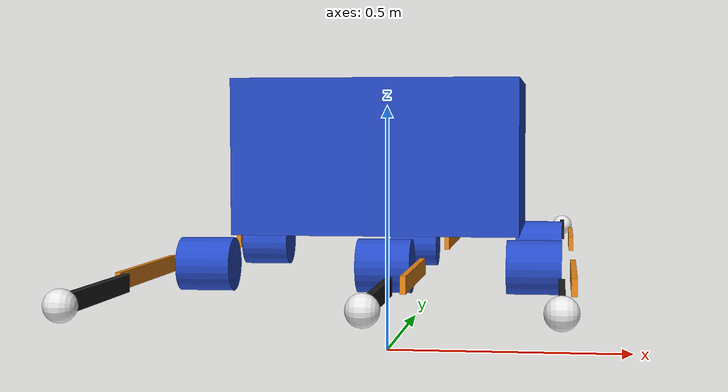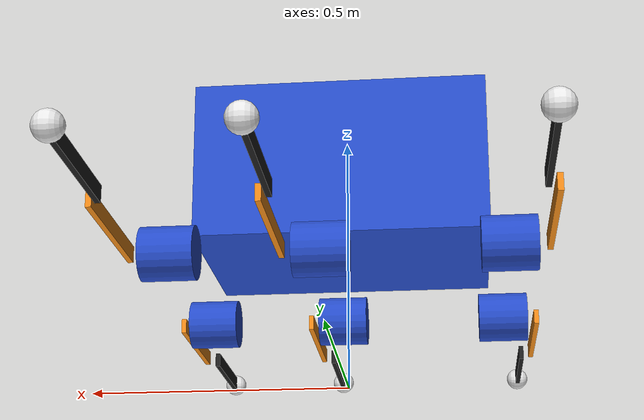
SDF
<sdf version='1.11'>
  <model name='robot'>
    <link name='base_link'>
      <inertial>
        <pose>0 0 0.40000000000000002 0 0 0</pose>
        <mass>140</mass>
        <inertia>
          <ixx>2.916666666666679</ixx>
          <ixy>0</ixy>
          <ixz>0</ixz>
          <iyy>4.5791666666666764</iyy>
          <iyz>0</iyz>
          <izz>5.3958333333333339</izz>
        </inertia>
      </inertial>
      <collision name='base_link_fixed_joint_lump__body_link_collision'>
        <pose>0 0 0.40000000000000002 0 0 0</pose>
        <geometry>
          <box>
            <size>0.55000000000000004 0.40000000000000002 0.29999999999999999</size>
          </box>
        </geometry>
        <surface>
          <contact>
            <ode/>
          </contact>
          <friction>
            <ode/>
          </friction>
        </surface>
      </collision>
      <visual name='base_link_fixed_joint_lump__body_link_visual'>
        <pose>0 0 0.40000000000000002 0 0 0</pose>
        <geometry>
          <box>
            <size>0.55000000000000004 0.40000000000000002 0.29999999999999999</size>
          </box>
        </geometry>
        <material>
          <script>
            <name>Gazebo/Blue</name>
            <uri>file://media/materials/scripts/gazebo.material</uri>
          </script>
          <diffuse>0.25 0.25 1 1</diffuse>
          <ambient>0.25 0.25 1 1</ambient>
        </material>
      </visual>
    </link>
    <joint name='coxa_joint_0' type='revolute'>
      <pose relative_to='base_link'>0.27500000000000002 -0.20000000000000001 0.25 0 0 0</pose>
      <parent>base_link</parent>
      <child>coxa_link_0</child>
      <axis>
        <xyz>0 0 1</xyz>
        <limit>
          <lower>-3.1400000000000001</lower>
          <upper>3.1400000000000001</upper>
          <effort>250</effort>
          <velocity>10</velocity>
        </limit>
        <dynamics>
          <spring_reference>0</spring_reference>
          <spring_stiffness>0</spring_stiffness>
        </dynamics>
      </axis>
    </joint>
    <link name='coxa_link_0'>
      <pose relative_to='coxa_joint_0'>0 0 0 0 0 0</pose>
      <inertial>
        <pose>0.029999999999999999 -0.050000000000000003 -0.050000000000000003 0 1.5700000000004057 0</pose>
        <mass>0.30099999999999999</mass>
        <inertia>
          <ixx>0.00043895833333333341</ixx>
          <ixy>0</ixy>
          <ixz>0</ixz>
          <iyy>0.00043895833333333341</iyy>
          <iyz>0</iyz>
          <izz>0.00037625000000000012</izz>
        </inertia>
      </inertial>
      <collision name='coxa_link_0_collision'>
        <pose>0.029999999999999999 -0.050000000000000003 -0.050000000000000003 0 1.5707963267948966 0</pose>
        <geometry>
          <cylinder>
            <length>0.10000000000000001</length>
            <radius>0.050000000000000003</radius>
          </cylinder>
        </geometry>
        <surface>
          <contact>
            <ode/>
          </contact>
          <friction>
            <ode/>
          </friction>
        </surface>
      </collision>
      <visual name='coxa_link_0_visual'>
        <pose>0.029999999999999999 -0.050000000000000003 -0.050000000000000003 0 1.5707963267948966 0</pose>
        <geometry>
          <cylinder>
            <length>0.10000000000000001</length>
            <radius>0.050000000000000003</radius>
          </cylinder>
        </geometry>
        <material>
          <script>
            <name>Gazebo/Blue</name>
            <uri>file://media/materials/scripts/gazebo.material</uri>
          </script>
          <diffuse>1 0 0 1</diffuse>
          <ambient>1 0 0 1</ambient>
        </material>
      </visual>
    </link>
    <joint name='femur_joint_0' type='revolute'>
      <pose relative_to='coxa_link_0'>0.070000000000000007 -0.050000000000000003 -0.050000000000000003 0 -1.5700000000004057 0</pose>
      <parent>coxa_link_0</parent>
      <child>femur_link_0</child>
      <axis>
        <xyz>0 0 1</xyz>
        <limit>
          <lower>-3.1400000000000001</lower>
          <upper>3.1400000000000001</upper>
          <effort>250</effort>
          <velocity>10</velocity>
        </limit>
        <dynamics>
          <spring_reference>0</spring_reference>
          <spring_stiffness>0</spring_stiffness>
        </dynamics>
      </axis>
    </joint>
    <link name='femur_link_0'>
      <pose relative_to='femur_joint_0'>0 0 0 0 0 0</pose>
      <inertial>
        <pose>0 -0.14999999999999999 -0.029999999999999999 0 0 0</pose>
        <mass>0.501</mass>
        <inertia>
          <ixx>0.003761674999999999</ixx>
          <ixy>0</ixy>
          <ixz>0</ixz>
          <iyy>4.1749999999999998e-05</iyy>
          <iyz>0</iyz>
          <izz>0.0037950749999999989</izz>
        </inertia>
      </inertial>
      <collision name='femur_link_0_collision'>
        <pose>0 -0.14999999999999999 -0.029999999999999999 0 0 0</pose>
        <geometry>
          <box>
            <size>0.029999999999999999 0.29999999999999999 0.01</size>
          </box>
        </geometry>
        <surface>
          <contact>
            <ode/>
          </contact>
          <friction>
            <ode/>
          </friction>
        </surface>
      </collision>
      <visual name='femur_link_0_visual'>
        <pose>0 -0.14999999999999999 -0.029999999999999999 0 0 0</pose>
        <geometry>
          <box>
            <size>0.029999999999999999 0.29999999999999999 0.01</size>
          </box>
        </geometry>
        <material>
          <script>
            <name>Gazebo/Orange</name>
            <uri>file://media/materials/scripts/gazebo.material</uri>
          </script>
          <diffuse>1 0.37500003 0.125 1</diffuse>
          <ambient>1 0.37500003 0.125 1</ambient>
        </material>
      </visual>
    </link>
    <joint name='tibia_joint_0' type='revolute'>
      <pose relative_to='femur_link_0'>0 -0.29999999999999999 -0.01 3.1415926535897931 0.001592653589793114 3.1415926535897931</pose>
      <parent>femur_link_0</parent>
      <child>tibia_link_0</child>
      <axis>
        <xyz>0 0 1</xyz>
        <limit>
          <lower>-3.1400000000000001</lower>
          <upper>3.1400000000000001</upper>
          <effort>250</effort>
          <velocity>10</velocity>
        </limit>
        <dynamics>
          <spring_reference>0</spring_reference>
          <spring_stiffness>0</spring_stiffness>
        </dynamics>
      </axis>
    </joint>
    <link name='tibia_link_0'>
      <pose relative_to='tibia_joint_0'>0 0 0 0 0 0</pose>
      <inertial>
        <pose>0 -0.15036069651741291 0 0 0 0</pose>
        <mass>0.40200000000000002</mass>
        <inertia>
          <ixx>0.0024606393656716459</ixx>
          <ixy>0</ixy>
          <ixz>0</ixz>
          <iyy>3.3666666666666667e-05</iyy>
          <iyz>0</iyz>
          <izz>0.0024873726990049792</izz>
        </inertia>
      </inertial>
      <collision name='tibia_link_0_collision'>
        <pose>0 -0.14999999999999999 0 0 0 0</pose>
        <geometry>
          <box>
            <size>0.029999999999999999 0.27000000000000002 0.01</size>
          </box>
        </geometry>
        <surface>
          <contact>
            <ode/>
          </contact>
          <friction>
            <ode/>
          </friction>
        </surface>
      </collision>
      <collision name='tibia_link_0_fixed_joint_lump__foot_link_0_collision_1'>
        <pose>0 -0.29499999999999998 0 0 0 0</pose>
        <geometry>
          <sphere>
            <radius>0.025000000000000001</radius>
          </sphere>
        </geometry>
        <surface>
          <contact>
            <ode/>
          </contact>
          <friction>
            <ode/>
          </friction>
        </surface>
      </collision>
      <visual name='tibia_link_0_visual'>
        <pose>0 -0.14999999999999999 0 0 0 0</pose>
        <geometry>
          <box>
            <size>0.029999999999999999 0.27000000000000002 0.01</size>
          </box>
        </geometry>
        <material>
          <script>
            <name>Gazebo/Black</name>
            <uri>file://media/materials/scripts/gazebo.material</uri>
          </script>
          <diffuse>0 0 0 1</diffuse>
          <ambient>0 0 0 1</ambient>
        </material>
      </visual>
      <visual name='tibia_link_0_fixed_joint_lump__foot_link_0_visual_1'>
        <pose>0 -0.29499999999999998 0 0 0 0</pose>
        <geometry>
          <sphere>
            <radius>0.025000000000000001</radius>
          </sphere>
        </geometry>
        <material>
          <script>
            <name>Gazebo/White</name>
            <uri>file://media/materials/scripts/gazebo.material</uri>
          </script>
          <diffuse>1 1 1 1</diffuse>
          <ambient>1 1 1 1</ambient>
        </material>
      </visual>
    </link>
    <joint name='coxa_joint_1' type='revolute'>
      <pose relative_to='base_link'>0 -0.20000000000000001 0.25 0 0 0</pose>
      <parent>base_link</parent>
      <child>coxa_link_1</child>
      <axis>
        <xyz>0 0 1</xyz>
        <limit>
          <lower>-3.1400000000000001</lower>
          <upper>3.1400000000000001</upper>
          <effort>250</effort>
          <velocity>10</velocity>
        </limit>
        <dynamics>
          <spring_reference>0</spring_reference>
          <spring_stiffness>0</spring_stiffness>
        </dynamics>
      </axis>
    </joint>
    <link name='coxa_link_1'>
      <pose relative_to='coxa_joint_1'>0 0 0 0 0 0</pose>
      <inertial>
        <pose>0.029999999999999999 -0.050000000000000003 -0.050000000000000003 0 1.5700000000004057 0</pose>
        <mass>0.30099999999999999</mass>
        <inertia>
          <ixx>0.00043895833333333341</ixx>
          <ixy>0</ixy>
          <ixz>0</ixz>
          <iyy>0.00043895833333333341</iyy>
          <iyz>0</iyz>
          <izz>0.00037625000000000012</izz>
        </inertia>
      </inertial>
      <collision name='coxa_link_1_collision'>
        <pose>0.029999999999999999 -0.050000000000000003 -0.050000000000000003 0 1.5707963267948966 0</pose>
        <geometry>
          <cylinder>
            <length>0.10000000000000001</length>
            <radius>0.050000000000000003</radius>
          </cylinder>
        </geometry>
        <surface>
          <contact>
            <ode/>
          </contact>
          <friction>
            <ode/>
          </friction>
        </surface>
      </collision>
      <visual name='coxa_link_1_visual'>
        <pose>0.029999999999999999 -0.050000000000000003 -0.050000000000000003 0 1.5707963267948966 0</pose>
        <geometry>
          <cylinder>
            <length>0.10000000000000001</length>
            <radius>0.050000000000000003</radius>
          </cylinder>
        </geometry>
        <material>
          <script>
            <name>Gazebo/Blue</name>
            <uri>file://media/materials/scripts/gazebo.material</uri>
          </script>
          <diffuse>1 0 0 1</diffuse>
          <ambient>1 0 0 1</ambient>
        </material>
      </visual>
    </link>
    <joint name='femur_joint_1' type='revolute'>
      <pose relative_to='coxa_link_1'>0.070000000000000007 -0.050000000000000003 -0.050000000000000003 0 -1.5700000000004057 0</pose>
      <parent>coxa_link_1</parent>
      <child>femur_link_1</child>
      <axis>
        <xyz>0 0 1</xyz>
        <limit>
          <lower>-3.1400000000000001</lower>
          <upper>3.1400000000000001</upper>
          <effort>250</effort>
          <velocity>10</velocity>
        </limit>
        <dynamics>
          <spring_reference>0</spring_reference>
          <spring_stiffness>0</spring_stiffness>
        </dynamics>
      </axis>
    </joint>
    <link name='femur_link_1'>
      <pose relative_to='femur_joint_1'>0 0 0 0 0 0</pose>
      <inertial>
        <pose>0 -0.14999999999999999 -0.029999999999999999 0 0 0</pose>
        <mass>0.501</mass>
        <inertia>
          <ixx>0.003761674999999999</ixx>
          <ixy>0</ixy>
          <ixz>0</ixz>
          <iyy>4.1749999999999998e-05</iyy>
          <iyz>0</iyz>
          <izz>0.0037950749999999989</izz>
        </inertia>
      </inertial>
      <collision name='femur_link_1_collision'>
        <pose>0 -0.14999999999999999 -0.029999999999999999 0 0 0</pose>
        <geometry>
          <box>
            <size>0.029999999999999999 0.29999999999999999 0.01</size>
          </box>
        </geometry>
        <surface>
          <contact>
            <ode/>
          </contact>
          <friction>
            <ode/>
          </friction>
        </surface>
      </collision>
      <visual name='femur_link_1_visual'>
        <pose>0 -0.14999999999999999 -0.029999999999999999 0 0 0</pose>
        <geometry>
          <box>
            <size>0.029999999999999999 0.29999999999999999 0.01</size>
          </box>
        </geometry>
        <material>
          <script>
            <name>Gazebo/Orange</name>
            <uri>file://media/materials/scripts/gazebo.material</uri>
          </script>
          <diffuse>1 0.37500003 0.125 1</diffuse>
          <ambient>1 0.37500003 0.125 1</ambient>
        </material>
      </visual>
    </link>
    <joint name='tibia_joint_1' type='revolute'>
      <pose relative_to='femur_link_1'>0 -0.29999999999999999 -0.01 3.1415926535897931 0.001592653589793114 3.1415926535897931</pose>
      <parent>femur_link_1</parent>
      <child>tibia_link_1</child>
      <axis>
        <xyz>0 0 1</xyz>
        <limit>
          <lower>-3.1400000000000001</lower>
          <upper>3.1400000000000001</upper>
          <effort>250</effort>
          <velocity>10</velocity>
        </limit>
        <dynamics>
          <spring_reference>0</spring_reference>
          <spring_stiffness>0</spring_stiffness>
        </dynamics>
      </axis>
    </joint>
    <link name='tibia_link_1'>
      <pose relative_to='tibia_joint_1'>0 0 0 0 0 0</pose>
      <inertial>
        <pose>0 -0.15036069651741291 0 0 0 0</pose>
        <mass>0.40200000000000002</mass>
        <inertia>
          <ixx>0.0024606393656716459</ixx>
          <ixy>0</ixy>
          <ixz>0</ixz>
          <iyy>3.3666666666666667e-05</iyy>
          <iyz>0</iyz>
          <izz>0.0024873726990049792</izz>
        </inertia>
      </inertial>
      <collision name='tibia_link_1_collision'>
        <pose>0 -0.14999999999999999 0 0 0 0</pose>
        <geometry>
          <box>
            <size>0.029999999999999999 0.27000000000000002 0.01</size>
          </box>
        </geometry>
        <surface>
          <contact>
            <ode/>
          </contact>
          <friction>
            <ode/>
          </friction>
        </surface>
      </collision>
      <collision name='tibia_link_1_fixed_joint_lump__foot_link_1_collision_1'>
        <pose>0 -0.29499999999999998 0 0 0 0</pose>
        <geometry>
          <sphere>
            <radius>0.025000000000000001</radius>
          </sphere>
        </geometry>
        <surface>
          <contact>
            <ode/>
          </contact>
          <friction>
            <ode/>
          </friction>
        </surface>
      </collision>
      <visual name='tibia_link_1_visual'>
        <pose>0 -0.14999999999999999 0 0 0 0</pose>
        <geometry>
          <box>
            <size>0.029999999999999999 0.27000000000000002 0.01</size>
          </box>
        </geometry>
        <material>
          <script>
            <name>Gazebo/Black</name>
            <uri>file://media/materials/scripts/gazebo.material</uri>
          </script>
          <diffuse>0 0 0 1</diffuse>
          <ambient>0 0 0 1</ambient>
        </material>
      </visual>
      <visual name='tibia_link_1_fixed_joint_lump__foot_link_1_visual_1'>
        <pose>0 -0.29499999999999998 0 0 0 0</pose>
        <geometry>
          <sphere>
            <radius>0.025000000000000001</radius>
          </sphere>
        </geometry>
        <material>
          <script>
            <name>Gazebo/White</name>
            <uri>file://media/materials/scripts/gazebo.material</uri>
          </script>
          <diffuse>1 1 1 1</diffuse>
          <ambient>1 1 1 1</ambient>
        </material>
      </visual>
    </link>
    <joint name='coxa_joint_2' type='revolute'>
      <pose relative_to='base_link'>-0.27500000000000002 -0.20000000000000001 0.25 0 0 0</pose>
      <parent>base_link</parent>
      <child>coxa_link_2</child>
      <axis>
        <xyz>0 0 1</xyz>
        <limit>
          <lower>-3.1400000000000001</lower>
          <upper>3.1400000000000001</upper>
          <effort>250</effort>
          <velocity>10</velocity>
        </limit>
        <dynamics>
          <spring_reference>0</spring_reference>
          <spring_stiffness>0</spring_stiffness>
        </dynamics>
      </axis>
    </joint>
    <link name='coxa_link_2'>
      <pose relative_to='coxa_joint_2'>0 0 0 0 0 0</pose>
      <inertial>
        <pose>-0.029999999999999999 -0.050000000000000003 -0.050000000000000003 0 1.5700000000004057 0</pose>
        <mass>0.30099999999999999</mass>
        <inertia>
          <ixx>0.00043895833333333341</ixx>
          <ixy>0</ixy>
          <ixz>0</ixz>
          <iyy>0.00043895833333333341</iyy>
          <iyz>0</iyz>
          <izz>0.00037625000000000012</izz>
        </inertia>
      </inertial>
      <collision name='coxa_link_2_collision'>
        <pose>-0.029999999999999999 -0.050000000000000003 -0.050000000000000003 0 1.5707963267948966 0</pose>
        <geometry>
          <cylinder>
            <length>0.10000000000000001</length>
            <radius>0.050000000000000003</radius>
          </cylinder>
        </geometry>
        <surface>
          <contact>
            <ode/>
          </contact>
          <friction>
            <ode/>
          </friction>
        </surface>
      </collision>
      <visual name='coxa_link_2_visual'>
        <pose>-0.029999999999999999 -0.050000000000000003 -0.050000000000000003 0 1.5707963267948966 0</pose>
        <geometry>
          <cylinder>
            <length>0.10000000000000001</length>
            <radius>0.050000000000000003</radius>
          </cylinder>
        </geometry>
        <material>
          <script>
            <name>Gazebo/Blue</name>
            <uri>file://media/materials/scripts/gazebo.material</uri>
          </script>
          <diffuse>1 0 0 1</diffuse>
          <ambient>1 0 0 1</ambient>
        </material>
      </visual>
    </link>
    <joint name='femur_joint_2' type='revolute'>
      <pose relative_to='coxa_link_2'>-0.070000000000000007 -0.050000000000000003 -0.050000000000000003 0 -1.5700000000004057 0</pose>
      <parent>coxa_link_2</parent>
      <child>femur_link_2</child>
      <axis>
        <xyz>0 0 1</xyz>
        <limit>
          <lower>-3.1400000000000001</lower>
          <upper>3.1400000000000001</upper>
          <effort>250</effort>
          <velocity>10</velocity>
        </limit>
        <dynamics>
          <spring_reference>0</spring_reference>
          <spring_stiffness>0</spring_stiffness>
        </dynamics>
      </axis>
    </joint>
    <link name='femur_link_2'>
      <pose relative_to='femur_joint_2'>0 0 0 0 0 0</pose>
      <inertial>
        <pose>0 -0.14999999999999999 0.029999999999999999 0 0 0</pose>
        <mass>0.501</mass>
        <inertia>
          <ixx>0.003761674999999999</ixx>
          <ixy>0</ixy>
          <ixz>0</ixz>
          <iyy>4.1749999999999998e-05</iyy>
          <iyz>0</iyz>
          <izz>0.0037950749999999989</izz>
        </inertia>
      </inertial>
      <collision name='femur_link_2_collision'>
        <pose>0 -0.14999999999999999 0.029999999999999999 0 0 0</pose>
        <geometry>
          <box>
            <size>0.029999999999999999 0.29999999999999999 0.01</size>
          </box>
        </geometry>
        <surface>
          <contact>
            <ode/>
          </contact>
          <friction>
            <ode/>
          </friction>
        </surface>
      </collision>
      <visual name='femur_link_2_visual'>
        <pose>0 -0.14999999999999999 0.029999999999999999 0 0 0</pose>
        <geometry>
          <box>
            <size>0.029999999999999999 0.29999999999999999 0.01</size>
          </box>
        </geometry>
        <material>
          <script>
            <name>Gazebo/Orange</name>
            <uri>file://media/materials/scripts/gazebo.material</uri>
          </script>
          <diffuse>1 0.37500003 0.125 1</diffuse>
          <ambient>1 0.37500003 0.125 1</ambient>
        </material>
      </visual>
    </link>
    <joint name='tibia_joint_2' type='revolute'>
      <pose relative_to='femur_link_2'>0 -0.29999999999999999 0.01 3.1415926535897931 0.001592653589793114 3.1415926535897931</pose>
      <parent>femur_link_2</parent>
      <child>tibia_link_2</child>
      <axis>
        <xyz>0 0 1</xyz>
        <limit>
          <lower>-3.1400000000000001</lower>
          <upper>3.1400000000000001</upper>
          <effort>250</effort>
          <velocity>10</velocity>
        </limit>
        <dynamics>
          <spring_reference>0</spring_reference>
          <spring_stiffness>0</spring_stiffness>
        </dynamics>
      </axis>
    </joint>
    <link name='tibia_link_2'>
      <pose relative_to='tibia_joint_2'>0 0 0 0 0 0</pose>
      <inertial>
        <pose>0 -0.15036069651741291 0 0 0 0</pose>
        <mass>0.40200000000000002</mass>
        <inertia>
          <ixx>0.0024606393656716459</ixx>
          <ixy>0</ixy>
          <ixz>0</ixz>
          <iyy>3.3666666666666667e-05</iyy>
          <iyz>0</iyz>
          <izz>0.0024873726990049792</izz>
        </inertia>
      </inertial>
      <collision name='tibia_link_2_collision'>
        <pose>0 -0.14999999999999999 0 0 0 0</pose>
        <geometry>
          <box>
            <size>0.029999999999999999 0.27000000000000002 0.01</size>
          </box>
        </geometry>
        <surface>
          <contact>
            <ode/>
          </contact>
          <friction>
            <ode/>
          </friction>
        </surface>
      </collision>
      <collision name='tibia_link_2_fixed_joint_lump__foot_link_2_collision_1'>
        <pose>0 -0.29499999999999998 0 0 0 0</pose>
        <geometry>
          <sphere>
            <radius>0.025000000000000001</radius>
          </sphere>
        </geometry>
        <surface>
          <contact>
            <ode/>
          </contact>
          <friction>
            <ode/>
          </friction>
        </surface>
      </collision>
      <visual name='tibia_link_2_visual'>
        <pose>0 -0.14999999999999999 0 0 0 0</pose>
        <geometry>
          <box>
            <size>0.029999999999999999 0.27000000000000002 0.01</size>
          </box>
        </geometry>
        <material>
          <script>
            <name>Gazebo/Black</name>
            <uri>file://media/materials/scripts/gazebo.material</uri>
          </script>
          <diffuse>0 0 0 1</diffuse>
          <ambient>0 0 0 1</ambient>
        </material>
      </visual>
      <visual name='tibia_link_2_fixed_joint_lump__foot_link_2_visual_1'>
        <pose>0 -0.29499999999999998 0 0 0 0</pose>
        <geometry>
          <sphere>
            <radius>0.025000000000000001</radius>
          </sphere>
        </geometry>
        <material>
          <script>
            <name>Gazebo/White</name>
            <uri>file://media/materials/scripts/gazebo.material</uri>
          </script>
          <diffuse>1 1 1 1</diffuse>
          <ambient>1 1 1 1</ambient>
        </material>
      </visual>
    </link>
    <joint name='coxa_joint_3' type='revolute'>
      <pose relative_to='base_link'>0.27500000000000002 0.20000000000000001 0.25 0 0 3.1400000000000001</pose>
      <parent>base_link</parent>
      <child>coxa_link_3</child>
      <axis>
        <xyz>0 0 1</xyz>
        <limit>
          <lower>-3.1400000000000001</lower>
          <upper>3.1400000000000001</upper>
          <effort>250</effort>
          <velocity>10</velocity>
        </limit>
        <dynamics>
          <spring_reference>0</spring_reference>
          <spring_stiffness>0</spring_stiffness>
        </dynamics>
      </axis>
    </joint>
    <link name='coxa_link_3'>
      <pose relative_to='coxa_joint_3'>0 0 0 0 0 0</pose>
      <inertial>
        <pose>-0.029999999999999999 -0.050000000000000003 -0.050000000000000003 0 1.5700000000004057 0</pose>
        <mass>0.30099999999999999</mass>
        <inertia>
          <ixx>0.00043895833333333341</ixx>
          <ixy>0</ixy>
          <ixz>0</ixz>
          <iyy>0.00043895833333333341</iyy>
          <iyz>0</iyz>
          <izz>0.00037625000000000012</izz>
        </inertia>
      </inertial>
      <collision name='coxa_link_3_collision'>
        <pose>-0.029999999999999999 -0.050000000000000003 -0.050000000000000003 0 1.5707963267948966 0</pose>
        <geometry>
          <cylinder>
            <length>0.10000000000000001</length>
            <radius>0.050000000000000003</radius>
          </cylinder>
        </geometry>
        <surface>
          <contact>
            <ode/>
          </contact>
          <friction>
            <ode/>
          </friction>
        </surface>
      </collision>
      <visual name='coxa_link_3_visual'>
        <pose>-0.029999999999999999 -0.050000000000000003 -0.050000000000000003 0 1.5707963267948966 0</pose>
        <geometry>
          <cylinder>
            <length>0.10000000000000001</length>
            <radius>0.050000000000000003</radius>
          </cylinder>
        </geometry>
        <material>
          <script>
            <name>Gazebo/Blue</name>
            <uri>file://media/materials/scripts/gazebo.material</uri>
          </script>
          <diffuse>1 0 0 1</diffuse>
          <ambient>1 0 0 1</ambient>
        </material>
      </visual>
    </link>
    <joint name='femur_joint_3' type='revolute'>
      <pose relative_to='coxa_link_3'>-0.070000000000000007 -0.050000000000000003 -0.050000000000000003 0 -1.5700000000004057 0</pose>
      <parent>coxa_link_3</parent>
      <child>femur_link_3</child>
      <axis>
        <xyz>0 0 1</xyz>
        <limit>
          <lower>-3.1400000000000001</lower>
          <upper>3.1400000000000001</upper>
          <effort>250</effort>
          <velocity>10</velocity>
        </limit>
        <dynamics>
          <spring_reference>0</spring_reference>
          <spring_stiffness>0</spring_stiffness>
        </dynamics>
      </axis>
    </joint>
    <link name='femur_link_3'>
      <pose relative_to='femur_joint_3'>0 0 0 0 0 0</pose>
      <inertial>
        <pose>0 -0.14999999999999999 0.029999999999999999 0 0 0</pose>
        <mass>0.501</mass>
        <inertia>
          <ixx>0.003761674999999999</ixx>
          <ixy>0</ixy>
          <ixz>0</ixz>
          <iyy>4.1749999999999998e-05</iyy>
          <iyz>0</iyz>
          <izz>0.0037950749999999989</izz>
        </inertia>
      </inertial>
      <collision name='femur_link_3_collision'>
        <pose>0 -0.14999999999999999 0.029999999999999999 0 0 0</pose>
        <geometry>
          <box>
            <size>0.029999999999999999 0.29999999999999999 0.01</size>
          </box>
        </geometry>
        <surface>
          <contact>
            <ode/>
          </contact>
          <friction>
            <ode/>
          </friction>
        </surface>
      </collision>
      <visual name='femur_link_3_visual'>
        <pose>0 -0.14999999999999999 0.029999999999999999 0 0 0</pose>
        <geometry>
          <box>
            <size>0.029999999999999999 0.29999999999999999 0.01</size>
          </box>
        </geometry>
        <material>
          <script>
            <name>Gazebo/Orange</name>
            <uri>file://media/materials/scripts/gazebo.material</uri>
          </script>
          <diffuse>1 0.37500003 0.125 1</diffuse>
          <ambient>1 0.37500003 0.125 1</ambient>
        </material>
      </visual>
    </link>
    <joint name='tibia_joint_3' type='revolute'>
      <pose relative_to='femur_link_3'>0 -0.29999999999999999 0.01 3.1415926535897931 0.001592653589793114 3.1415926535897931</pose>
      <parent>femur_link_3</parent>
      <child>tibia_link_3</child>
      <axis>
        <xyz>0 0 1</xyz>
        <limit>
          <lower>-3.1400000000000001</lower>
          <upper>3.1400000000000001</upper>
          <effort>250</effort>
          <velocity>10</velocity>
        </limit>
        <dynamics>
          <spring_reference>0</spring_reference>
          <spring_stiffness>0</spring_stiffness>
        </dynamics>
      </axis>
    </joint>
    <link name='tibia_link_3'>
      <pose relative_to='tibia_joint_3'>0 0 0 0 0 0</pose>
      <inertial>
        <pose>0 -0.15036069651741291 0 0 0 0</pose>
        <mass>0.40200000000000002</mass>
        <inertia>
          <ixx>0.0024606393656716459</ixx>
          <ixy>0</ixy>
          <ixz>0</ixz>
          <iyy>3.3666666666666667e-05</iyy>
          <iyz>0</iyz>
          <izz>0.0024873726990049792</izz>
        </inertia>
      </inertial>
      <collision name='tibia_link_3_collision'>
        <pose>0 -0.14999999999999999 0 0 0 0</pose>
        <geometry>
          <box>
            <size>0.029999999999999999 0.27000000000000002 0.01</size>
          </box>
        </geometry>
        <surface>
          <contact>
            <ode/>
          </contact>
          <friction>
            <ode/>
          </friction>
        </surface>
      </collision>
      <collision name='tibia_link_3_fixed_joint_lump__foot_link_3_collision_1'>
        <pose>0 -0.29499999999999998 0 0 0 0</pose>
        <geometry>
          <sphere>
            <radius>0.025000000000000001</radius>
          </sphere>
        </geometry>
        <surface>
          <contact>
            <ode/>
          </contact>
          <friction>
            <ode/>
          </friction>
        </surface>
      </collision>
      <visual name='tibia_link_3_visual'>
        <pose>0 -0.14999999999999999 0 0 0 0</pose>
        <geometry>
          <box>
            <size>0.029999999999999999 0.27000000000000002 0.01</size>
          </box>
        </geometry>
        <material>
          <script>
            <name>Gazebo/Black</name>
            <uri>file://media/materials/scripts/gazebo.material</uri>
          </script>
          <diffuse>0 0 0 1</diffuse>
          <ambient>0 0 0 1</ambient>
        </material>
      </visual>
      <visual name='tibia_link_3_fixed_joint_lump__foot_link_3_visual_1'>
        <pose>0 -0.29499999999999998 0 0 0 0</pose>
        <geometry>
          <sphere>
            <radius>0.025000000000000001</radius>
          </sphere>
        </geometry>
        <material>
          <script>
            <name>Gazebo/White</name>
            <uri>file://media/materials/scripts/gazebo.material</uri>
          </script>
          <diffuse>1 1 1 1</diffuse>
          <ambient>1 1 1 1</ambient>
        </material>
      </visual>
    </link>
    <joint name='coxa_joint_4' type='revolute'>
      <pose relative_to='base_link'>0 0.20000000000000001 0.25 0 0 3.1400000000000001</pose>
      <parent>base_link</parent>
      <child>coxa_link_4</child>
      <axis>
        <xyz>0 0 1</xyz>
        <limit>
          <lower>-3.1400000000000001</lower>
          <upper>3.1400000000000001</upper>
          <effort>250</effort>
          <velocity>10</velocity>
        </limit>
        <dynamics>
          <spring_reference>0</spring_reference>
          <spring_stiffness>0</spring_stiffness>
        </dynamics>
      </axis>
    </joint>
    <link name='coxa_link_4'>
      <pose relative_to='coxa_joint_4'>0 0 0 0 0 0</pose>
      <inertial>
        <pose>-0.029999999999999999 -0.050000000000000003 -0.050000000000000003 0 1.5700000000004057 0</pose>
        <mass>0.30099999999999999</mass>
        <inertia>
          <ixx>0.00043895833333333341</ixx>
          <ixy>0</ixy>
          <ixz>0</ixz>
          <iyy>0.00043895833333333341</iyy>
          <iyz>0</iyz>
          <izz>0.00037625000000000012</izz>
        </inertia>
      </inertial>
      <collision name='coxa_link_4_collision'>
        <pose>-0.029999999999999999 -0.050000000000000003 -0.050000000000000003 0 1.5707963267948966 0</pose>
        <geometry>
          <cylinder>
            <length>0.10000000000000001</length>
            <radius>0.050000000000000003</radius>
          </cylinder>
        </geometry>
        <surface>
          <contact>
            <ode/>
          </contact>
          <friction>
            <ode/>
          </friction>
        </surface>
      </collision>
      <visual name='coxa_link_4_visual'>
        <pose>-0.029999999999999999 -0.050000000000000003 -0.050000000000000003 0 1.5707963267948966 0</pose>
        <geometry>
          <cylinder>
            <length>0.10000000000000001</length>
            <radius>0.050000000000000003</radius>
          </cylinder>
        </geometry>
        <material>
          <script>
            <name>Gazebo/Blue</name>
            <uri>file://media/materials/scripts/gazebo.material</uri>
          </script>
          <diffuse>1 0 0 1</diffuse>
          <ambient>1 0 0 1</ambient>
        </material>
      </visual>
    </link>
    <joint name='femur_joint_4' type='revolute'>
      <pose relative_to='coxa_link_4'>-0.070000000000000007 -0.050000000000000003 -0.050000000000000003 0 -1.5700000000004057 0</pose>
      <parent>coxa_link_4</parent>
      <child>femur_link_4</child>
      <axis>
        <xyz>0 0 1</xyz>
        <limit>
          <lower>-3.1400000000000001</lower>
          <upper>3.1400000000000001</upper>
          <effort>250</effort>
          <velocity>10</velocity>
        </limit>
        <dynamics>
          <spring_reference>0</spring_reference>
          <spring_stiffness>0</spring_stiffness>
        </dynamics>
      </axis>
    </joint>
    <link name='femur_link_4'>
      <pose relative_to='femur_joint_4'>0 0 0 0 0 0</pose>
      <inertial>
        <pose>0 -0.14999999999999999 0.029999999999999999 0 0 0</pose>
        <mass>0.501</mass>
        <inertia>
          <ixx>0.003761674999999999</ixx>
          <ixy>0</ixy>
          <ixz>0</ixz>
          <iyy>4.1749999999999998e-05</iyy>
          <iyz>0</iyz>
          <izz>0.0037950749999999989</izz>
        </inertia>
      </inertial>
      <collision name='femur_link_4_collision'>
        <pose>0 -0.14999999999999999 0.029999999999999999 0 0 0</pose>
        <geometry>
          <box>
            <size>0.029999999999999999 0.29999999999999999 0.01</size>
          </box>
        </geometry>
        <surface>
          <contact>
            <ode/>
          </contact>
          <friction>
            <ode/>
          </friction>
        </surface>
      </collision>
      <visual name='femur_link_4_visual'>
        <pose>0 -0.14999999999999999 0.029999999999999999 0 0 0</pose>
        <geometry>
          <box>
            <size>0.029999999999999999 0.29999999999999999 0.01</size>
          </box>
        </geometry>
        <material>
          <script>
            <name>Gazebo/Orange</name>
            <uri>file://media/materials/scripts/gazebo.material</uri>
          </script>
          <diffuse>1 0.37500003 0.125 1</diffuse>
          <ambient>1 0.37500003 0.125 1</ambient>
        </material>
      </visual>
    </link>
    <joint name='tibia_joint_4' type='revolute'>
      <pose relative_to='femur_link_4'>0 -0.29999999999999999 0.01 3.1415926535897931 0.001592653589793114 3.1415926535897931</pose>
      <parent>femur_link_4</parent>
      <child>tibia_link_4</child>
      <axis>
        <xyz>0 0 1</xyz>
        <limit>
          <lower>-3.1400000000000001</lower>
          <upper>3.1400000000000001</upper>
          <effort>250</effort>
          <velocity>10</velocity>
        </limit>
        <dynamics>
          <spring_reference>0</spring_reference>
          <spring_stiffness>0</spring_stiffness>
        </dynamics>
      </axis>
    </joint>
    <link name='tibia_link_4'>
      <pose relative_to='tibia_joint_4'>0 0 0 0 0 0</pose>
      <inertial>
        <pose>0 -0.15036069651741291 0 0 0 0</pose>
        <mass>0.40200000000000002</mass>
        <inertia>
          <ixx>0.0024606393656716459</ixx>
          <ixy>0</ixy>
          <ixz>0</ixz>
          <iyy>3.3666666666666667e-05</iyy>
          <iyz>0</iyz>
          <izz>0.0024873726990049792</izz>
        </inertia>
      </inertial>
      <collision name='tibia_link_4_collision'>
        <pose>0 -0.14999999999999999 0 0 0 0</pose>
        <geometry>
          <box>
            <size>0.029999999999999999 0.27000000000000002 0.01</size>
          </box>
        </geometry>
        <surface>
          <contact>
            <ode/>
          </contact>
          <friction>
            <ode/>
          </friction>
        </surface>
      </collision>
      <collision name='tibia_link_4_fixed_joint_lump__foot_link_4_collision_1'>
        <pose>0 -0.29499999999999998 0 0 0 0</pose>
        <geometry>
          <sphere>
            <radius>0.025000000000000001</radius>
          </sphere>
        </geometry>
        <surface>
          <contact>
            <ode/>
          </contact>
          <friction>
            <ode/>
          </friction>
        </surface>
      </collision>
      <visual name='tibia_link_4_visual'>
        <pose>0 -0.14999999999999999 0 0 0 0</pose>
        <geometry>
          <box>
            <size>0.029999999999999999 0.27000000000000002 0.01</size>
          </box>
        </geometry>
        <material>
          <script>
            <name>Gazebo/Black</name>
            <uri>file://media/materials/scripts/gazebo.material</uri>
          </script>
          <diffuse>0 0 0 1</diffuse>
          <ambient>0 0 0 1</ambient>
        </material>
      </visual>
      <visual name='tibia_link_4_fixed_joint_lump__foot_link_4_visual_1'>
        <pose>0 -0.29499999999999998 0 0 0 0</pose>
        <geometry>
          <sphere>
            <radius>0.025000000000000001</radius>
          </sphere>
        </geometry>
        <material>
          <script>
            <name>Gazebo/White</name>
            <uri>file://media/materials/scripts/gazebo.material</uri>
          </script>
          <diffuse>1 1 1 1</diffuse>
          <ambient>1 1 1 1</ambient>
        </material>
      </visual>
    </link>
    <joint name='coxa_joint_5' type='revolute'>
      <pose relative_to='base_link'>-0.27500000000000002 0.20000000000000001 0.25 0 0 3.1400000000000001</pose>
      <parent>base_link</parent>
      <child>coxa_link_5</child>
      <axis>
        <xyz>0 0 1</xyz>
        <limit>
          <lower>-3.1400000000000001</lower>
          <upper>3.1400000000000001</upper>
          <effort>250</effort>
          <velocity>10</velocity>
        </limit>
        <dynamics>
          <spring_reference>0</spring_reference>
          <spring_stiffness>0</spring_stiffness>
        </dynamics>
      </axis>
    </joint>
    <link name='coxa_link_5'>
      <pose relative_to='coxa_joint_5'>0 0 0 0 0 0</pose>
      <inertial>
        <pose>0.029999999999999999 -0.050000000000000003 -0.050000000000000003 0 1.5700000000004057 0</pose>
        <mass>0.30099999999999999</mass>
        <inertia>
          <ixx>0.00043895833333333341</ixx>
          <ixy>0</ixy>
          <ixz>0</ixz>
          <iyy>0.00043895833333333341</iyy>
          <iyz>0</iyz>
          <izz>0.00037625000000000012</izz>
        </inertia>
      </inertial>
      <collision name='coxa_link_5_collision'>
        <pose>0.029999999999999999 -0.050000000000000003 -0.050000000000000003 0 1.5707963267948966 0</pose>
        <geometry>
          <cylinder>
            <length>0.10000000000000001</length>
            <radius>0.050000000000000003</radius>
          </cylinder>
        </geometry>
        <surface>
          <contact>
            <ode/>
          </contact>
          <friction>
            <ode/>
          </friction>
        </surface>
      </collision>
      <visual name='coxa_link_5_visual'>
        <pose>0.029999999999999999 -0.050000000000000003 -0.050000000000000003 0 1.5707963267948966 0</pose>
        <geometry>
          <cylinder>
            <length>0.10000000000000001</length>
            <radius>0.050000000000000003</radius>
          </cylinder>
        </geometry>
        <material>
          <script>
            <name>Gazebo/Blue</name>
            <uri>file://media/materials/scripts/gazebo.material</uri>
          </script>
          <diffuse>1 0 0 1</diffuse>
          <ambient>1 0 0 1</ambient>
        </material>
      </visual>
    </link>
    <joint name='femur_joint_5' type='revolute'>
      <pose relative_to='coxa_link_5'>0.070000000000000007 -0.050000000000000003 -0.050000000000000003 0 -1.5700000000004057 0</pose>
      <parent>coxa_link_5</parent>
      <child>femur_link_5</child>
      <axis>
        <xyz>0 0 1</xyz>
        <limit>
          <lower>-3.1400000000000001</lower>
          <upper>3.1400000000000001</upper>
          <effort>250</effort>
          <velocity>10</velocity>
        </limit>
        <dynamics>
          <spring_reference>0</spring_reference>
          <spring_stiffness>0</spring_stiffness>
        </dynamics>
      </axis>
    </joint>
    <link name='femur_link_5'>
      <pose relative_to='femur_joint_5'>0 0 0 0 0 0</pose>
      <inertial>
        <pose>0 -0.14999999999999999 -0.029999999999999999 0 0 0</pose>
        <mass>0.501</mass>
        <inertia>
          <ixx>0.003761674999999999</ixx>
          <ixy>0</ixy>
          <ixz>0</ixz>
          <iyy>4.1749999999999998e-05</iyy>
          <iyz>0</iyz>
          <izz>0.0037950749999999989</izz>
        </inertia>
      </inertial>
      <collision name='femur_link_5_collision'>
        <pose>0 -0.14999999999999999 -0.029999999999999999 0 0 0</pose>
        <geometry>
          <box>
            <size>0.029999999999999999 0.29999999999999999 0.01</size>
          </box>
        </geometry>
        <surface>
          <contact>
            <ode/>
          </contact>
          <friction>
            <ode/>
          </friction>
        </surface>
      </collision>
      <visual name='femur_link_5_visual'>
        <pose>0 -0.14999999999999999 -0.029999999999999999 0 0 0</pose>
        <geometry>
          <box>
            <size>0.029999999999999999 0.29999999999999999 0.01</size>
          </box>
        </geometry>
        <material>
          <script>
            <name>Gazebo/Orange</name>
            <uri>file://media/materials/scripts/gazebo.material</uri>
          </script>
          <diffuse>1 0.37500003 0.125 1</diffuse>
          <ambient>1 0.37500003 0.125 1</ambient>
        </material>
      </visual>
    </link>
    <joint name='tibia_joint_5' type='revolute'>
      <pose relative_to='femur_link_5'>0 -0.29999999999999999 -0.01 3.1415926535897931 0.001592653589793114 3.1415926535897931</pose>
      <parent>femur_link_5</parent>
      <child>tibia_link_5</child>
      <axis>
        <xyz>0 0 1</xyz>
        <limit>
          <lower>-3.1400000000000001</lower>
          <upper>3.1400000000000001</upper>
          <effort>250</effort>
          <velocity>10</velocity>
        </limit>
        <dynamics>
          <spring_reference>0</spring_reference>
          <spring_stiffness>0</spring_stiffness>
        </dynamics>
      </axis>
    </joint>
    <link name='tibia_link_5'>
      <pose relative_to='tibia_joint_5'>0 0 0 0 0 0</pose>
      <inertial>
        <pose>0 -0.15036069651741291 0 0 0 0</pose>
        <mass>0.40200000000000002</mass>
        <inertia>
          <ixx>0.0024606393656716459</ixx>
          <ixy>0</ixy>
          <ixz>0</ixz>
          <iyy>3.3666666666666667e-05</iyy>
          <iyz>0</iyz>
          <izz>0.0024873726990049792</izz>
        </inertia>
      </inertial>
      <collision name='tibia_link_5_collision'>
        <pose>0 -0.14999999999999999 0 0 0 0</pose>
        <geometry>
          <box>
            <size>0.029999999999999999 0.27000000000000002 0.01</size>
          </box>
        </geometry>
        <surface>
          <contact>
            <ode/>
          </contact>
          <friction>
            <ode/>
          </friction>
        </surface>
      </collision>
      <collision name='tibia_link_5_fixed_joint_lump__foot_link_5_collision_1'>
        <pose>0 -0.29499999999999998 0 0 0 0</pose>
        <geometry>
          <sphere>
            <radius>0.025000000000000001</radius>
          </sphere>
        </geometry>
        <surface>
          <contact>
            <ode/>
          </contact>
          <friction>
            <ode/>
          </friction>
        </surface>
      </collision>
      <visual name='tibia_link_5_visual'>
        <pose>0 -0.14999999999999999 0 0 0 0</pose>
        <geometry>
          <box>
            <size>0.029999999999999999 0.27000000000000002 0.01</size>
          </box>
        </geometry>
        <material>
          <script>
            <name>Gazebo/Black</name>
            <uri>file://media/materials/scripts/gazebo.material</uri>
          </script>
          <diffuse>0 0 0 1</diffuse>
          <ambient>0 0 0 1</ambient>
        </material>
      </visual>
      <visual name='tibia_link_5_fixed_joint_lump__foot_link_5_visual_1'>
        <pose>0 -0.29499999999999998 0 0 0 0</pose>
        <geometry>
          <sphere>
            <radius>0.025000000000000001</radius>
          </sphere>
        </geometry>
        <material>
          <script>
            <name>Gazebo/White</name>
            <uri>file://media/materials/scripts/gazebo.material</uri>
          </script>
          <diffuse>1 1 1 1</diffuse>
          <ambient>1 1 1 1</ambient>
        </material>
      </visual>
    </link>
    <plugin name='gz_ros2_control::GazeboSimROS2ControlPlugin' filename='libgz_ros2_control-system.so'>
      <robot_param>robot_description</robot_param>
      <robot_param_node>robot_state_publisher</robot_param_node>
      <parameters>/home/jorge/Documents/Code/silver2_gz/install/silver/share/silver/config/silver_controllers.yaml</parameters>
    </plugin>
    <frame name='body_joint' attached_to='base_link'>
      <pose>0 0 0.40000000000000002 0 0 0</pose>
    </frame>
    <frame name='body_link' attached_to='body_joint'>
      <pose>0 0 0 0 0 0</pose>
    </frame>
    <frame name='foot_joint_0' attached_to='tibia_link_0'>
      <pose>0 -0.29499999999999998 0 0 0 0</pose>
    </frame>
    <frame name='foot_link_0' attached_to='foot_joint_0'>
      <pose>0 0 0 0 0 0</pose>
    </frame>
    <frame name='foot_joint_1' attached_to='tibia_link_1'>
      <pose>0 -0.29499999999999998 0 0 0 0</pose>
    </frame>
    <frame name='foot_link_1' attached_to='foot_joint_1'>
      <pose>0 0 0 0 0 0</pose>
    </frame>
    <frame name='foot_joint_2' attached_to='tibia_link_2'>
      <pose>0 -0.29499999999999998 0 0 0 0</pose>
    </frame>
    <frame name='foot_link_2' attached_to='foot_joint_2'>
      <pose>0 0 0 0 0 0</pose>
    </frame>
    <frame name='foot_joint_3' attached_to='tibia_link_3'>
      <pose>0 -0.29499999999999998 0 0 0 0</pose>
    </frame>
    <frame name='foot_link_3' attached_to='foot_joint_3'>
      <pose>0 0 0 0 0 0</pose>
    </frame>
    <frame name='foot_joint_4' attached_to='tibia_link_4'>
      <pose>0 -0.29499999999999998 0 0 0 0</pose>
    </frame>
    <frame name='foot_link_4' attached_to='foot_joint_4'>
      <pose>0 0 0 0 0 0</pose>
    </frame>
    <frame name='foot_joint_5' attached_to='tibia_link_5'>
      <pose>0 -0.29499999999999998 0 0 0 0</pose>
    </frame>
    <frame name='foot_link_5' attached_to='foot_joint_5'>
      <pose>0 0 0 0 0 0</pose>
    </frame>
  </model>
</sdf>
